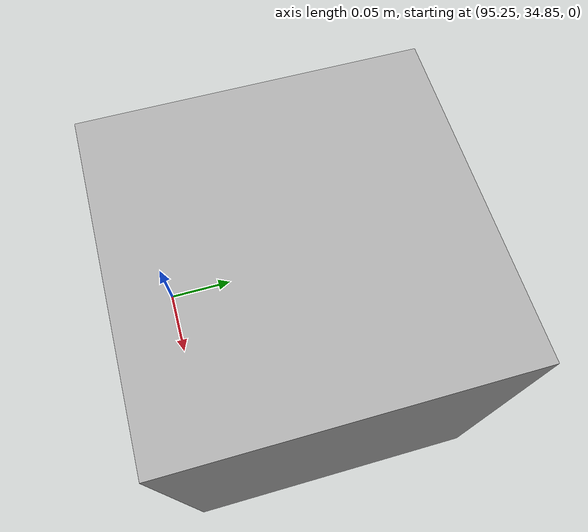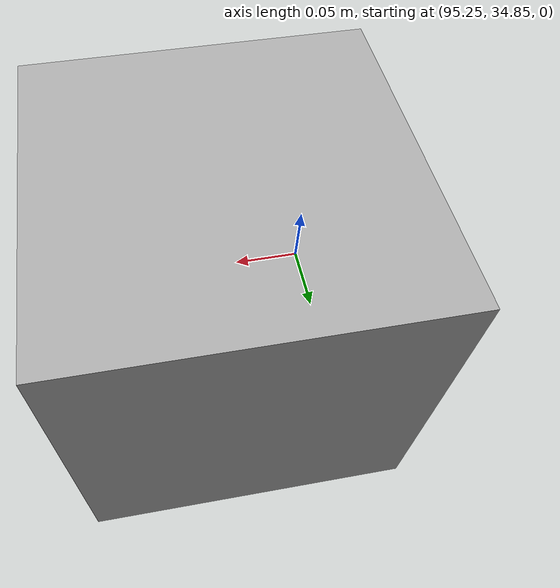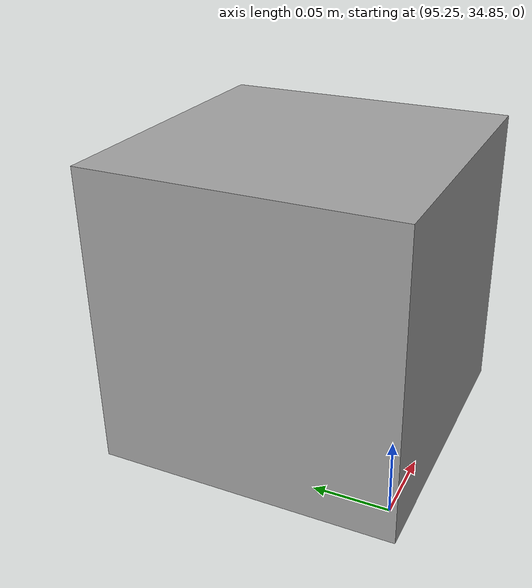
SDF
<sdf version="1.6">
 <world name="default">
  <model name="Yellow_Mailbox">
   <link name="link">
    <inertial>
     <mass>0.3</mass>
     <inertia><ixx>0.5</ixx><ixy>0</ixy><ixz>0</ixz><iyy>0.5</iyy><iyz>0</iyz><izz>1</izz></inertia>
    </inertial>
    <visual name="visual">
     <geometry><mesh><uri>model://Yellow_Mailbox/meshes/yellow.dae</uri><scale>1 1 1</scale></mesh></geometry>
     <material>
      <shader type="normal_map_tangent_space"><normal_map>__default__</normal_map></shader>
      <emissive>1 1 0 0</emissive>
     </material>
    </visual>
    <collision name="collision">
     <geometry><box><size>1.5 1.5 0.3</size></box></geometry>
     <surface>
      <friction>
       <ode><mu>1</mu><mu2>1</mu2><fdir1>0 0 0</fdir1><slip1>0</slip1><slip2>0</slip2></ode>
       <torsional>
        <coefficient>1</coefficient>
        <patch_radius>0</patch_radius>
        <surface_radius>0</surface_radius>
        <use_patch_radius>1</use_patch_radius>
        <ode><slip>0</slip></ode>
       </torsional>
      </friction>
      <bounce><restitution_coefficient>0</restitution_coefficient><threshold>1e+06</threshold></bounce>
      <contact>
       <collide_without_contact>0</collide_without_contact>
       <collide_without_contact_bitmask>1</collide_without_contact_bitmask>
       <collide_bitmask>1</collide_bitmask>
       <ode>
        <soft_cfm>0</soft_cfm>
        <soft_erp>0.2</soft_erp>
        <kp>1e+13</kp>
        <kd>1</kd>
        <max_vel>0.1</max_vel>
        <min_depth>0.001</min_depth>
       </ode>
       <bullet>
        <split_impulse>1</split_impulse>
        <split_impulse_penetration_threshold>-0.01</split_impulse_penetration_threshold>
        <soft_cfm>0</soft_cfm>
        <soft_erp>0.2</soft_erp>
        <kp>1e+13</kp>
        <kd>1</kd>
       </bullet>
      </contact>
     </surface>
    </collision>
   </link>
   <static>0</static>
   <pose>70.7731 59.4055 0.14902 0 -0 0</pose>
  </model>
  <model name="Blue_Package_1">
   <link name="link">
    <inertial>
     <mass>0.2</mass>
     <inertia><ixx>1</ixx><ixy>0</ixy><ixz>0</ixz><iyy>1</iyy><iyz>0</iyz><izz>1</izz></inertia>
    </inertial>
    <visual name="visual">
     <geometry><mesh><uri>model://Blue_Package/meshes/bluebox.dae</uri><scale>1 1 1</scale></mesh></geometry>
     <material>
      <emissive>0 0 1 0</emissive>
      <shader type="vertex"><normal_map>__default__</normal_map></shader>
     </material>
    </visual>
    <collision name="collision">
     <geometry><box><size>0.2 0.2 0.2</size></box></geometry>
     <surface>
      <friction>
       <ode><mu>1</mu><mu2>1</mu2><fdir1>0 0 0</fdir1><slip1>0</slip1><slip2>0</slip2></ode>
       <torsional>
        <coefficient>1</coefficient>
        <patch_radius>0</patch_radius>
        <surface_radius>0</surface_radius>
        <use_patch_radius>1</use_patch_radius>
        <ode><slip>0</slip></ode>
       </torsional>
      </friction>
      <bounce><restitution_coefficient>0</restitution_coefficient><threshold>1e+06</threshold></bounce>
      <contact>
       <collide_without_contact>0</collide_without_contact>
       <collide_without_contact_bitmask>1</collide_without_contact_bitmask>
       <collide_bitmask>1</collide_bitmask>
       <ode>
        <soft_cfm>0</soft_cfm>
        <soft_erp>0.2</soft_erp>
        <kp>1e+13</kp>
        <kd>1</kd>
        <max_vel>0.1</max_vel>
        <min_depth>0.001</min_depth>
       </ode>
       <bullet>
        <split_impulse>1</split_impulse>
        <split_impulse_penetration_threshold>-0.01</split_impulse_penetration_threshold>
        <soft_cfm>0</soft_cfm>
        <soft_erp>0.2</soft_erp>
        <kp>1e+13</kp>
        <kd>1</kd>
       </bullet>
      </contact>
     </surface>
    </collision>
   </link>
   <static>0</static>
   <pose>95.326 34.9379 0.09902 0 -0 0</pose>
  </model>
 </world>
</sdf>
